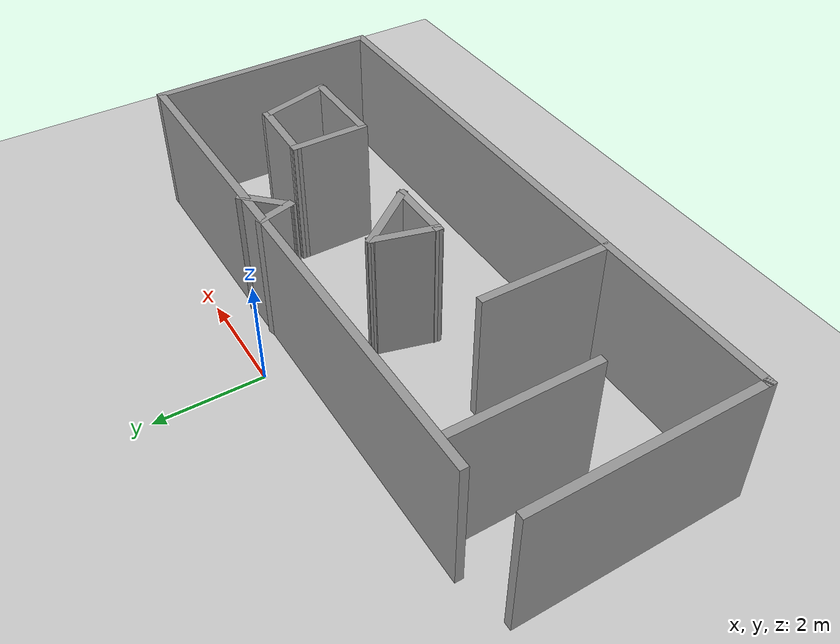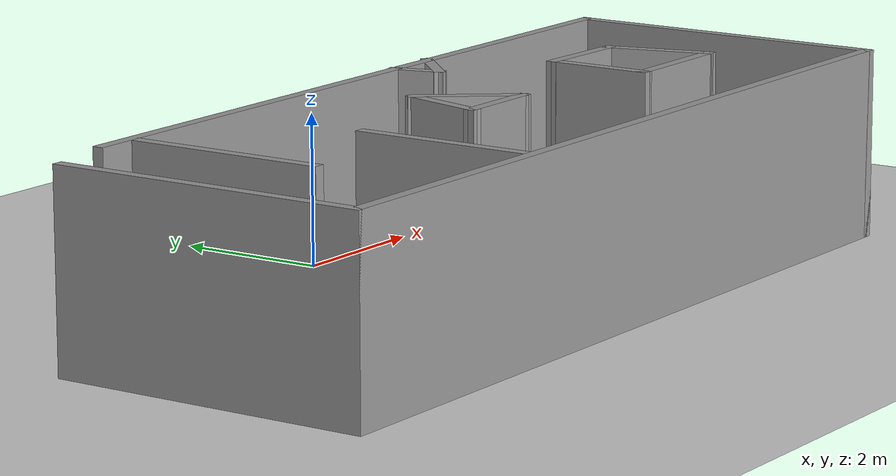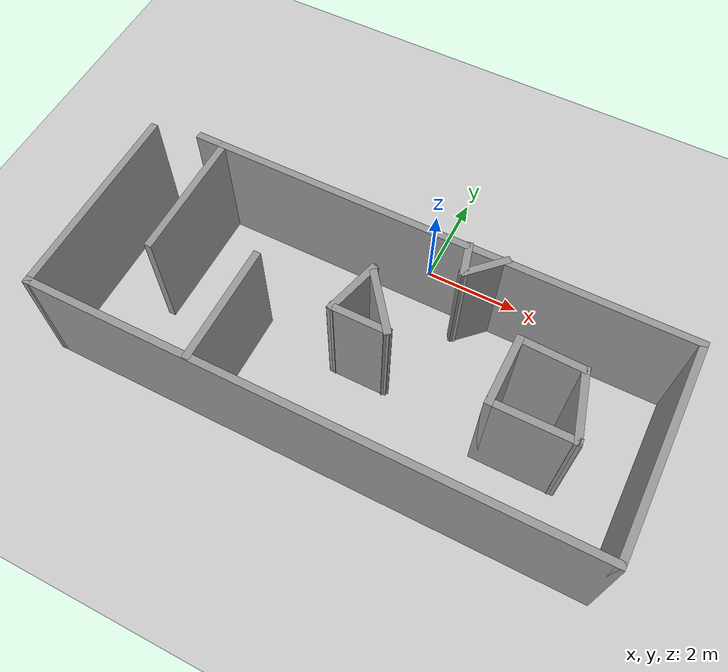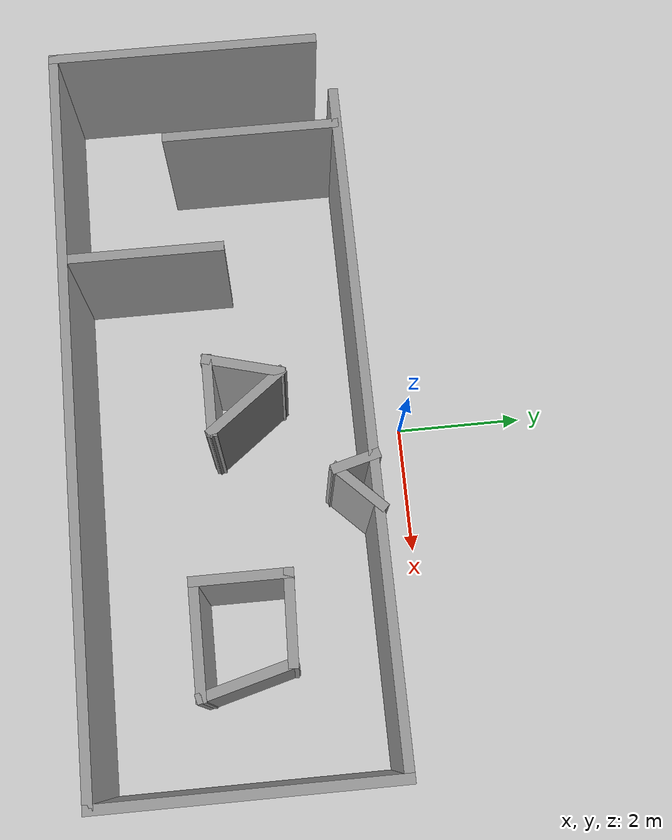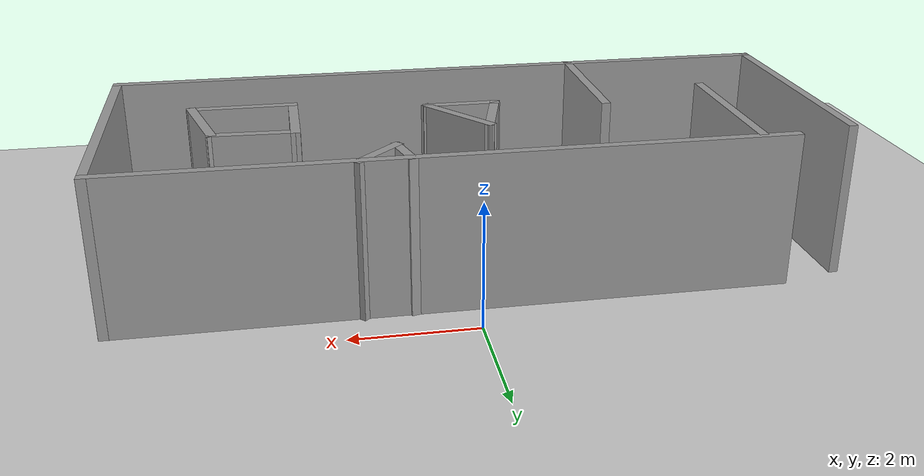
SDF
<sdf version="1.7">
 <world name="default">
  <light name="sun" type="directional">
   <pose>0 0 10 0 -0 0</pose>
   <diffuse>0.8 0.8 0.8 1</diffuse>
   <specular>0.2 0.2 0.2 1</specular>
   <attenuation>
    <range>1000</range>
    <constant>0.9</constant>
    <linear>0.01</linear>
    <quadratic>0.001</quadratic>
   </attenuation>
   <direction>-0.5 0.1 -0.9</direction>
   <spot><inner_angle>0</inner_angle><outer_angle>0</outer_angle><falloff>0</falloff></spot>
  </light>
  <model name="ground_plane">
   <static>1</static>
   <link name="link">
    <collision name="collision">
     <geometry><plane><normal>0 0 1</normal><size>100 100</size></plane></geometry>
     <surface>
      <contact><collide_bitmask>65535</collide_bitmask></contact>
      <friction><ode><mu>100</mu><mu2>50</mu2></ode></friction>
     </surface>
    </collision>
    <visual name="visual">
     <cast_shadows>0</cast_shadows>
     <geometry><plane><normal>0 0 1</normal><size>100 100</size></plane></geometry>
     <material>
      <script><uri>file://media/materials/scripts/gazebo.material</uri><name>Gazebo/Grey</name></script>
     </material>
    </visual>
   </link>
  </model>
  <gravity>0 0 -9.8</gravity>
  <magnetic_field>6e-06 2.3e-05 -4.2e-05</magnetic_field>
  <atmosphere type="adiabatic"/>
  <physics type="ode">
   <max_step_size>0.001</max_step_size>
   <real_time_factor>1</real_time_factor>
   <real_time_update_rate>1000</real_time_update_rate>
  </physics>
  <scene><ambient>0.4 0.4 0.4 1</ambient><background>0.7 0.7 0.7 1</background><shadows>1</shadows></scene>
  <spherical_coordinates>
   <surface_model>EARTH_WGS84</surface_model>
   <latitude_deg>0</latitude_deg>
   <longitude_deg>0</longitude_deg>
   <elevation>0</elevation>
   <heading_deg>0</heading_deg>
  </spherical_coordinates>
  <model name="UntitledNov12">
   <pose>-0.245 -2.5425 0 0 -0 0</pose>
   <link name="Wall_0">
    <collision name="Wall_0_Collision">
     <geometry><box><size>4.25 0.15 2.5</size></box></geometry>
     <pose>0 0 1.25 0 -0 0</pose>
    </collision>
    <visual name="Wall_0_Visual">
     <pose>0 0 1.25 0 -0 0</pose>
     <geometry><box><size>4.25 0.15 2.5</size></box></geometry>
     <material>
      <script><uri>file://media/materials/scripts/gazebo.material</uri><name>Gazebo/Grey</name></script>
      <ambient>1 1 1 1</ambient>
     </material>
     <meta><layer>0</layer></meta>
    </visual>
    <pose>-5.675 -0.4175 0 0 -0 -1.5708</pose>
   </link>
   <link name="Wall_1">
    <collision name="Wall_1_Collision">
     <geometry><box><size>11.5 0.15 2.5</size></box></geometry>
     <pose>0 0 1.25 0 -0 0</pose>
    </collision>
    <visual name="Wall_1_Visual">
     <pose>0 0 1.25 0 -0 0</pose>
     <geometry><box><size>11.5 0.15 2.5</size></box></geometry>
     <material>
      <script><uri>file://media/materials/scripts/gazebo.material</uri><name>Gazebo/Grey</name></script>
      <ambient>1 1 1 1</ambient>
     </material>
     <meta><layer>0</layer></meta>
    </visual>
    <pose>0 -2.4675 0 0 -0 0</pose>
   </link>
   <link name="Wall_11">
    <collision name="Wall_11_Collision">
     <geometry><box><size>1.5 0.15 2.5</size></box></geometry>
     <pose>0 0 1.25 0 -0 0</pose>
    </collision>
    <visual name="Wall_11_Visual">
     <pose>0 0 1.25 0 -0 0</pose>
     <geometry><box><size>1.5 0.15 2.5</size></box></geometry>
     <material>
      <script><uri>file://media/materials/scripts/gazebo.material</uri><name>Gazebo/Grey</name></script>
      <ambient>1 1 1 1</ambient>
     </material>
     <meta><layer>0</layer></meta>
    </visual>
    <pose>2.755 -0.1725 0 0 -0 -1.5708</pose>
   </link>
   <link name="Wall_12">
    <collision name="Wall_12_Collision">
     <geometry><box><size>1.75 0.15 2.5</size></box></geometry>
     <pose>0 0 1.25 0 -0 0</pose>
    </collision>
    <visual name="Wall_12_Visual">
     <pose>0 0 1.25 0 -0 0</pose>
     <geometry><box><size>1.75 0.15 2.5</size></box></geometry>
     <material>
      <script><uri>file://media/materials/scripts/gazebo.material</uri><name>Gazebo/Grey</name></script>
      <ambient>1 1 1 1</ambient>
     </material>
     <meta><layer>0</layer></meta>
    </visual>
    <pose>3.555 -0.8475 0 0 -0 0</pose>
   </link>
   <link name="Wall_13">
    <collision name="Wall_13_Collision">
     <geometry><box><size>1.5 0.15 2.5</size></box></geometry>
     <pose>0 0 1.25 0 -0 0</pose>
    </collision>
    <visual name="Wall_13_Visual">
     <pose>0 0 1.25 0 -0 0</pose>
     <geometry><box><size>1.5 0.15 2.5</size></box></geometry>
     <material>
      <script><uri>file://media/materials/scripts/gazebo.material</uri><name>Gazebo/Grey</name></script>
      <ambient>1 1 1 1</ambient>
     </material>
     <meta><layer>0</layer></meta>
    </visual>
    <pose>4.1803 -0.1955 0 0 -0 1.8326</pose>
   </link>
   <link name="Wall_14">
    <collision name="Wall_14_Collision">
     <geometry><box><size>1.40144 0.15 2.5</size></box></geometry>
     <pose>0 0 1.25 0 -0 0</pose>
    </collision>
    <visual name="Wall_14_Visual">
     <pose>0 0 1.25 0 -0 0</pose>
     <geometry><box><size>1.40144 0.15 2.5</size></box></geometry>
     <material>
      <script><uri>file://media/materials/scripts/gazebo.material</uri><name>Gazebo/Grey</name></script>
      <ambient>1 1 1 1</ambient>
     </material>
     <meta><layer>0</layer></meta>
    </visual>
    <pose>3.3803 0.4795 0 0 -0 3.10483</pose>
   </link>
   <link name="Wall_16">
    <collision name="Wall_16_Collision">
     <geometry><box><size>2.5 0.15 2.5</size></box></geometry>
     <pose>0 0 1.25 0 -0 0</pose>
    </collision>
    <visual name="Wall_16_Visual">
     <pose>0 0 1.25 0 -0 0</pose>
     <geometry><box><size>2.5 0.15 2.5</size></box></geometry>
     <material>
      <script><uri>file://media/materials/scripts/gazebo.material</uri><name>Gazebo/Grey</name></script>
      <ambient>1 1 1 1</ambient>
     </material>
     <meta><layer>0</layer></meta>
    </visual>
    <pose>-2.265 -1.2725 0 0 -0 -1.5708</pose>
   </link>
   <link name="Wall_18">
    <collision name="Wall_18_Collision">
     <geometry><box><size>0.75 0.15 2.5</size></box></geometry>
     <pose>0 0 1.25 0 -0 0</pose>
    </collision>
    <visual name="Wall_18_Visual">
     <pose>0 0 1.25 0 -0 0</pose>
     <geometry><box><size>0.75 0.15 2.5</size></box></geometry>
     <material>
      <script><uri>file://media/materials/scripts/gazebo.material</uri><name>Gazebo/Grey</name></script>
      <ambient>1 1 1 1</ambient>
     </material>
     <meta><layer>0</layer></meta>
    </visual>
    <pose>1.24265 1.61272 0 0 -0 -1.309</pose>
   </link>
   <link name="Wall_19">
    <collision name="Wall_19_Collision">
     <geometry><box><size>1 0.15 2.5</size></box></geometry>
     <pose>0 0 1.25 0 -0 0</pose>
    </collision>
    <visual name="Wall_19_Visual">
     <pose>0 0 1.25 0 -0 0</pose>
     <geometry><box><size>1 0.15 2.5</size></box></geometry>
     <material>
      <script><uri>file://media/materials/scripts/gazebo.material</uri><name>Gazebo/Grey</name></script>
      <ambient>1 1 1 1</ambient>
     </material>
     <meta><layer>0</layer></meta>
    </visual>
    <pose>1.62081 1.62346 0 0 -0 0.785398</pose>
   </link>
   <link name="Wall_2">
    <collision name="Wall_2_Collision">
     <geometry><box><size>4.5 0.15 2.5</size></box></geometry>
     <pose>0 0 1.25 0 -0 0</pose>
    </collision>
    <visual name="Wall_2_Visual">
     <pose>0 0 1.25 0 -0 0</pose>
     <geometry><box><size>4.5 0.15 2.5</size></box></geometry>
     <material>
      <script><uri>file://media/materials/scripts/gazebo.material</uri><name>Gazebo/Grey</name></script>
      <ambient>1 1 1 1</ambient>
     </material>
     <meta><layer>0</layer></meta>
    </visual>
    <pose>5.675 -0.2925 0 0 -0 1.5708</pose>
   </link>
   <link name="Wall_3">
    <collision name="Wall_3_Collision">
     <geometry><box><size>10.5 0.15 2.5</size></box></geometry>
     <pose>0 0 1.25 0 -0 0</pose>
    </collision>
    <visual name="Wall_3_Visual">
     <pose>0 0 1.25 0 -0 0</pose>
     <geometry><box><size>10.5 0.15 2.5</size></box></geometry>
     <material>
      <script><uri>file://media/materials/scripts/gazebo.material</uri><name>Gazebo/Grey</name></script>
      <ambient>1 1 1 1</ambient>
     </material>
     <meta><layer>0</layer></meta>
    </visual>
    <pose>0.5 1.8825 0 0 -0 3.14159</pose>
   </link>
   <link name="Wall_5">
    <collision name="Wall_5_Collision">
     <geometry><box><size>2.75 0.15 2.5</size></box></geometry>
     <pose>0 0 1.25 0 -0 0</pose>
    </collision>
    <visual name="Wall_5_Visual">
     <pose>0 0 1.25 0 -0 0</pose>
     <geometry><box><size>2.75 0.15 2.5</size></box></geometry>
     <material>
      <script><uri>file://media/materials/scripts/gazebo.material</uri><name>Gazebo/Grey</name></script>
      <ambient>1 1 1 1</ambient>
     </material>
     <meta><layer>0</layer></meta>
    </visual>
    <pose>-4.155 0.5325 0 0 -0 -1.5708</pose>
   </link>
   <link name="Wall_7">
    <collision name="Wall_7_Collision">
     <geometry><box><size>1.25 0.15 2.5</size></box></geometry>
     <pose>0 0 1.25 0 -0 0</pose>
    </collision>
    <visual name="Wall_7_Visual">
     <pose>0 0 1.25 0 -0 0</pose>
     <geometry><box><size>1.25 0.15 2.5</size></box></geometry>
     <material>
      <script><uri>file://media/materials/scripts/gazebo.material</uri><name>Gazebo/Grey</name></script>
      <ambient>1 1 1 1</ambient>
     </material>
     <meta><layer>0</layer></meta>
    </visual>
    <pose>-0.34735 0.111241 0 0 -0 -1.8326</pose>
   </link>
   <link name="Wall_8">
    <collision name="Wall_8_Collision">
     <geometry><box><size>1.25 0.15 2.5</size></box></geometry>
     <pose>0 0 1.25 0 -0 0</pose>
    </collision>
    <visual name="Wall_8_Visual">
     <pose>0 0 1.25 0 -0 0</pose>
     <geometry><box><size>1.25 0.15 2.5</size></box></geometry>
     <material>
      <script><uri>file://media/materials/scripts/gazebo.material</uri><name>Gazebo/Grey</name></script>
      <ambient>1 1 1 1</ambient>
     </material>
     <meta><layer>0</layer></meta>
    </visual>
    <pose>0.060299 -0.420018 0 0 -0 0</pose>
   </link>
   <link name="Wall_9">
    <collision name="Wall_9_Collision">
     <geometry><box><size>1.48927 0.15 2.5</size></box></geometry>
     <pose>0 0 1.25 0 -0 0</pose>
    </collision>
    <visual name="Wall_9_Visual">
     <pose>0 0 1.25 0 -0 0</pose>
     <geometry><box><size>1.48927 0.15 2.5</size></box></geometry>
     <material>
      <script><uri>file://media/materials/scripts/gazebo.material</uri><name>Gazebo/Grey</name></script>
      <ambient>1 1 1 1</ambient>
     </material>
     <meta><layer>0</layer></meta>
    </visual>
    <pose>0.20265 0.111241 0 0 -0 2.2253</pose>
   </link>
   <static>1</static>
  </model>
 </world>
</sdf>
